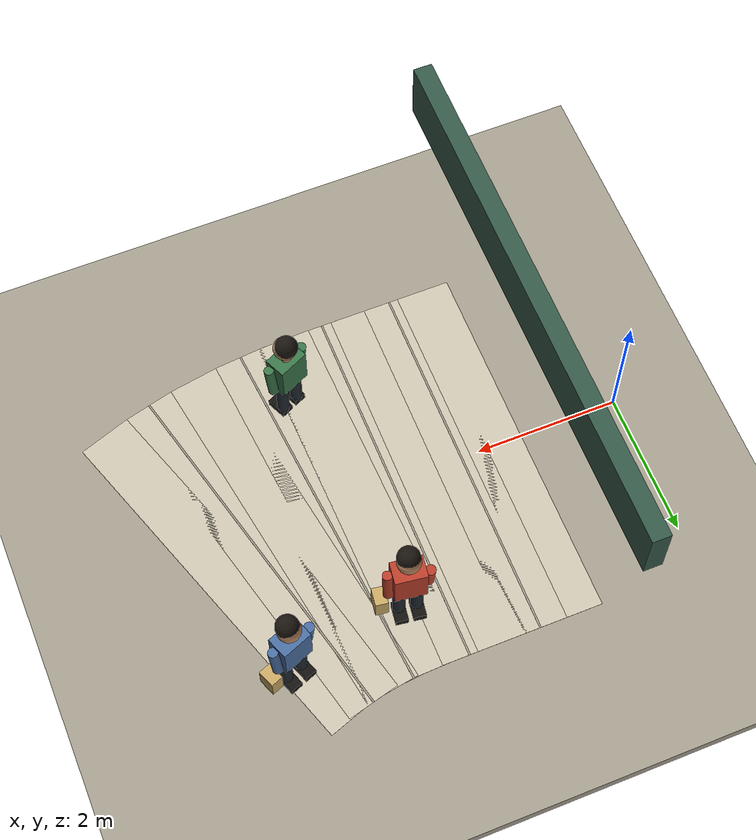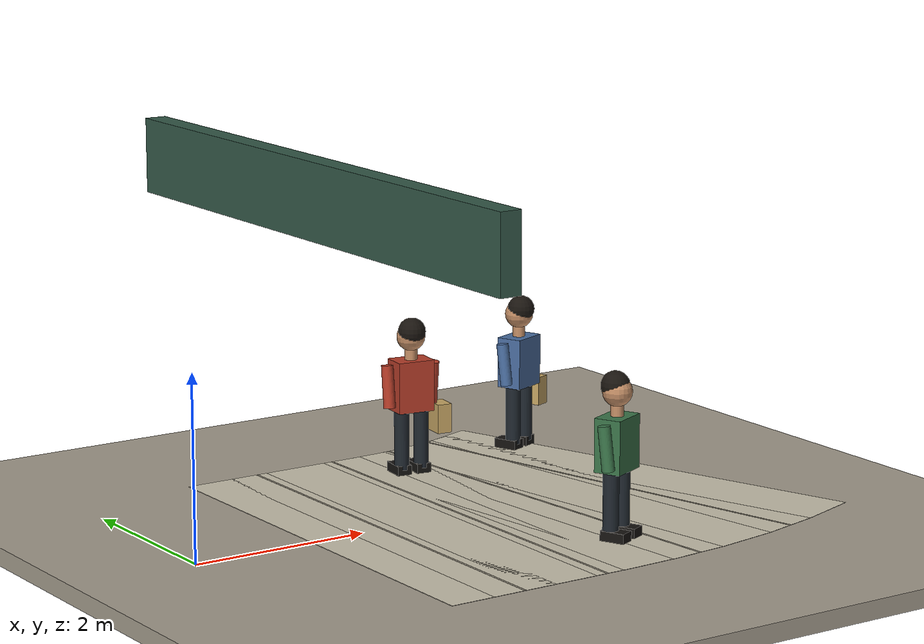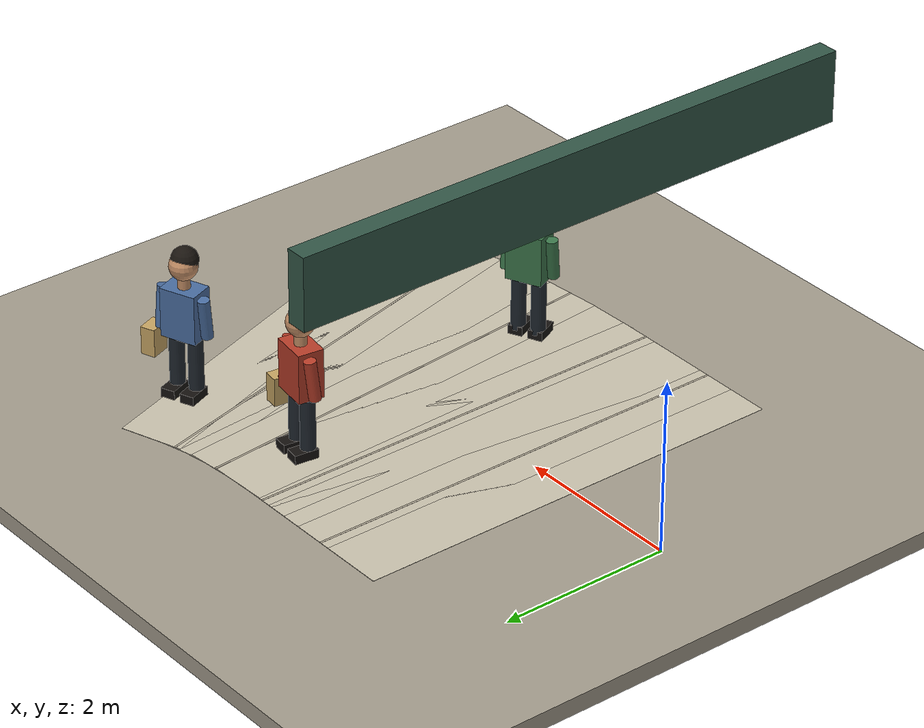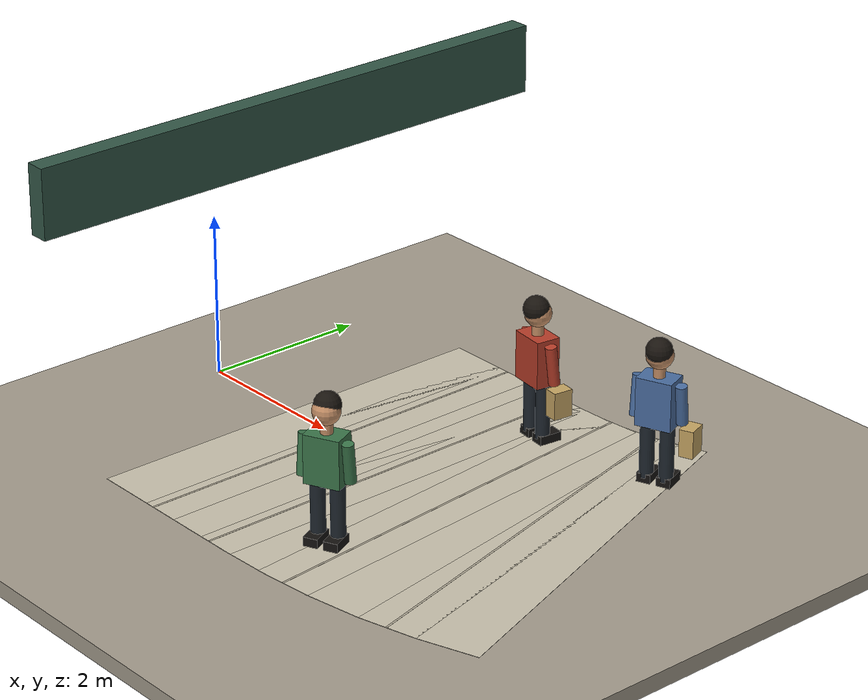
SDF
<sdf version="1.10">
 <world name="swan_market">
  <model name="ground">
   <static>true</static>
   <pose>15 0 -0.1 0 0 0</pose>
   <link name="body">
    <collision name="box_collision"><geometry><box><size>46 24 0.2</size></box></geometry></collision>
    <visual name="box_visual">
     <geometry><box><size>46 24 0.2</size></box></geometry>
     <material><ambient>0.64 0.61 0.55 1</ambient><diffuse>0.64 0.61 0.55 1</diffuse></material>
    </visual>
   </link>
  </model>
  <model name="market_paving_7">
   <static>true</static>
   <pose>1.75 0 0.002 0 0 0</pose>
   <link name="body">
    <visual name="box_visual">
     <geometry><box><size>0.75 5.2 0.004</size></box></geometry>
     <material><ambient>0.79 0.76 0.68 1</ambient><diffuse>0.79 0.76 0.68 1</diffuse></material>
    </visual>
   </link>
  </model>
  <model name="market_paving_8">
   <static>true</static>
   <pose>2.25 0 0.002 0 0 0</pose>
   <link name="body">
    <visual name="box_visual">
     <geometry><box><size>0.75 5.2 0.004</size></box></geometry>
     <material><ambient>0.79 0.76 0.68 1</ambient><diffuse>0.79 0.76 0.68 1</diffuse></material>
    </visual>
   </link>
  </model>
  <model name="paving_joint_8">
   <static>true</static>
   <pose>2.25 0 0.0045 0 0 0</pose>
   <link name="body">
    <visual name="box_visual">
     <geometry><box><size>0.025 5.2 0.001</size></box></geometry>
     <material><ambient>0.67 0.64 0.57 1</ambient><diffuse>0.67 0.64 0.57 1</diffuse></material>
    </visual>
   </link>
  </model>
  <model name="market_paving_9">
   <static>true</static>
   <pose>2.75 0 0.002 0 0 0</pose>
   <link name="body">
    <visual name="box_visual">
     <geometry><box><size>0.75 5.2 0.004</size></box></geometry>
     <material><ambient>0.79 0.76 0.68 1</ambient><diffuse>0.79 0.76 0.68 1</diffuse></material>
    </visual>
   </link>
  </model>
  <model name="market_paving_10">
   <static>true</static>
   <pose>3.25 0.00031537 0.002 0 0 0.003781</pose>
   <link name="body">
    <visual name="box_visual">
     <geometry><box><size>0.75 5.2 0.004</size></box></geometry>
     <material><ambient>0.79 0.76 0.68 1</ambient><diffuse>0.79 0.76 0.68 1</diffuse></material>
    </visual>
   </link>
  </model>
  <model name="paving_joint_10">
   <static>true</static>
   <pose>3.25 0.00031537 0.0045 0 0 0.003781</pose>
   <link name="body">
    <visual name="box_visual">
     <geometry><box><size>0.025 5.2 0.001</size></box></geometry>
     <material><ambient>0.67 0.64 0.57 1</ambient><diffuse>0.67 0.64 0.57 1</diffuse></material>
    </visual>
   </link>
  </model>
  <model name="market_paving_11">
   <static>true</static>
   <pose>3.75 0.0084221 0.002 0 0 0.033398</pose>
   <link name="body">
    <visual name="box_visual">
     <geometry><box><size>0.75 5.2 0.004</size></box></geometry>
     <material><ambient>0.79 0.76 0.68 1</ambient><diffuse>0.79 0.76 0.68 1</diffuse></material>
    </visual>
   </link>
  </model>
  <model name="market_paving_12">
   <static>true</static>
   <pose>4.25 0.038143 0.002 0 0 0.089204</pose>
   <link name="body">
    <visual name="box_visual">
     <geometry><box><size>0.75 5.2 0.004</size></box></geometry>
     <material><ambient>0.79 0.76 0.68 1</ambient><diffuse>0.79 0.76 0.68 1</diffuse></material>
    </visual>
   </link>
  </model>
  <model name="paving_joint_12">
   <static>true</static>
   <pose>4.25 0.038143 0.0045 0 0 0.089204</pose>
   <link name="body">
    <visual name="box_visual">
     <geometry><box><size>0.025 5.2 0.001</size></box></geometry>
     <material><ambient>0.67 0.64 0.57 1</ambient><diffuse>0.67 0.64 0.57 1</diffuse></material>
    </visual>
   </link>
  </model>
  <model name="market_paving_13">
   <static>true</static>
   <pose>4.75 0.10125 0.002 0 0 0.16424</pose>
   <link name="body">
    <visual name="box_visual">
     <geometry><box><size>0.75 5.2 0.004</size></box></geometry>
     <material><ambient>0.79 0.76 0.68 1</ambient><diffuse>0.79 0.76 0.68 1</diffuse></material>
    </visual>
   </link>
  </model>
  <model name="market_paving_14">
   <static>true</static>
   <pose>5.25 0.20586 0.002 0 0 0.2486</pose>
   <link name="body">
    <visual name="box_visual">
     <geometry><box><size>0.75 5.2 0.004</size></box></geometry>
     <material><ambient>0.79 0.76 0.68 1</ambient><diffuse>0.79 0.76 0.68 1</diffuse></material>
    </visual>
   </link>
  </model>
  <model name="paving_joint_14">
   <static>true</static>
   <pose>5.25 0.20586 0.0045 0 0 0.2486</pose>
   <link name="body">
    <visual name="box_visual">
     <geometry><box><size>0.025 5.2 0.001</size></box></geometry>
     <material><ambient>0.67 0.64 0.57 1</ambient><diffuse>0.67 0.64 0.57 1</diffuse></material>
    </visual>
   </link>
  </model>
  <model name="market_paving_15">
   <static>true</static>
   <pose>5.75 0.35543 0.002 0 0 0.33122</pose>
   <link name="body">
    <visual name="box_visual">
     <geometry><box><size>0.75 5.2 0.004</size></box></geometry>
     <material><ambient>0.79 0.76 0.68 1</ambient><diffuse>0.79 0.76 0.68 1</diffuse></material>
    </visual>
   </link>
  </model>
  <model name="entrance_header">
   <static>true</static>
   <pose>1.5 0 3.6 0 0 0</pose>
   <link name="body">
    <collision name="box_collision"><geometry><box><size>0.24 6.8 0.82</size></box></geometry></collision>
    <visual name="box_visual">
     <geometry><box><size>0.24 6.8 0.82</size></box></geometry>
     <material><ambient>0.2 0.34 0.28 1</ambient><diffuse>0.2 0.34 0.28 1</diffuse></material>
    </visual>
   </link>
  </model>
  <model name="shopper_fruit">
   <static>true</static>
   <pose>5.4053 1.9859 0 0 0 1.9395</pose>
   <link name="body">
    <collision name="leg_-1_collision">
     <pose>0 -0.12 0.4 0 0 0</pose>
     <geometry><cylinder><radius>0.085</radius><length>0.68</length></cylinder></geometry>
    </collision>
    <visual name="leg_-1_visual">
     <pose>0 -0.12 0.4 0 0 0</pose>
     <geometry><cylinder><radius>0.085</radius><length>0.68</length></cylinder></geometry>
     <material><ambient>0.12 0.15 0.18 1</ambient><diffuse>0.12 0.15 0.18 1</diffuse></material>
    </visual>
    <collision name="shoe_-1_collision">
     <pose>0.06 -0.12 0.055 0 0 0</pose>
     <geometry><box><size>0.28 0.17 0.11</size></box></geometry>
    </collision>
    <visual name="shoe_-1_visual">
     <pose>0.06 -0.12 0.055 0 0 0</pose>
     <geometry><box><size>0.28 0.17 0.11</size></box></geometry>
     <material><ambient>0.08 0.07 0.06 1</ambient><diffuse>0.08 0.07 0.06 1</diffuse></material>
    </visual>
    <collision name="arm_-1_collision">
     <pose>0.02 -0.27 1.02 0 -0.12 0</pose>
     <geometry><cylinder><radius>0.068</radius><length>0.48</length></cylinder></geometry>
    </collision>
    <visual name="arm_-1_visual">
     <pose>0.02 -0.27 1.02 0 -0.12 0</pose>
     <geometry><cylinder><radius>0.068</radius><length>0.48</length></cylinder></geometry>
     <material><ambient>0.29 0.43 0.63 1</ambient><diffuse>0.29 0.43 0.63 1</diffuse></material>
    </visual>
    <collision name="leg_1_collision">
     <pose>0 0.12 0.4 0 0 0</pose>
     <geometry><cylinder><radius>0.085</radius><length>0.68</length></cylinder></geometry>
    </collision>
    <visual name="leg_1_visual">
     <pose>0 0.12 0.4 0 0 0</pose>
     <geometry><cylinder><radius>0.085</radius><length>0.68</length></cylinder></geometry>
     <material><ambient>0.12 0.15 0.18 1</ambient><diffuse>0.12 0.15 0.18 1</diffuse></material>
    </visual>
    <collision name="shoe_1_collision">
     <pose>0.06 0.12 0.055 0 0 0</pose>
     <geometry><box><size>0.28 0.17 0.11</size></box></geometry>
    </collision>
    <visual name="shoe_1_visual">
     <pose>0.06 0.12 0.055 0 0 0</pose>
     <geometry><box><size>0.28 0.17 0.11</size></box></geometry>
     <material><ambient>0.08 0.07 0.06 1</ambient><diffuse>0.08 0.07 0.06 1</diffuse></material>
    </visual>
    <collision name="arm_1_collision">
     <pose>0.02 0.27 1.02 0 0.12 0</pose>
     <geometry><cylinder><radius>0.068</radius><length>0.48</length></cylinder></geometry>
    </collision>
    <visual name="arm_1_visual">
     <pose>0.02 0.27 1.02 0 0.12 0</pose>
     <geometry><cylinder><radius>0.068</radius><length>0.48</length></cylinder></geometry>
     <material><ambient>0.29 0.43 0.63 1</ambient><diffuse>0.29 0.43 0.63 1</diffuse></material>
    </visual>
    <collision name="torso_collision">
     <pose>0 0 1.02 0 0 0</pose>
     <geometry><box><size>0.3 0.43 0.58</size></box></geometry>
    </collision>
    <visual name="torso_visual">
     <pose>0 0 1.02 0 0 0</pose>
     <geometry><box><size>0.3 0.43 0.58</size></box></geometry>
     <material><ambient>0.29 0.43 0.63 1</ambient><diffuse>0.29 0.43 0.63 1</diffuse></material>
    </visual>
    <visual name="neck_visual">
     <pose>0 0 1.37 0 0 0</pose>
     <geometry><cylinder><radius>0.07</radius><length>0.13</length></cylinder></geometry>
     <material><ambient>0.77 0.56 0.4 1</ambient><diffuse>0.77 0.56 0.4 1</diffuse></material>
    </visual>
    <collision name="head_collision">
     <pose>0 0 1.57 0 0 0</pose>
     <geometry><sphere><radius>0.16</radius></sphere></geometry>
    </collision>
    <visual name="head_visual">
     <pose>0 0 1.57 0 0 0</pose>
     <geometry><sphere><radius>0.16</radius></sphere></geometry>
     <material><ambient>0.77 0.56 0.4 1</ambient><diffuse>0.77 0.56 0.4 1</diffuse></material>
    </visual>
    <visual name="hair_visual">
     <pose>-0.025 0 1.63 0 0 0</pose>
     <geometry><sphere><radius>0.155</radius></sphere></geometry>
     <material><ambient>0.1 0.08 0.06 1</ambient><diffuse>0.1 0.08 0.06 1</diffuse></material>
    </visual>
    <collision name="shopping_bag_collision">
     <pose>0.04 -0.38 0.6 0 0 0</pose>
     <geometry><box><size>0.24 0.17 0.33</size></box></geometry>
    </collision>
    <visual name="shopping_bag_visual">
     <pose>0.04 -0.38 0.6 0 0 0</pose>
     <geometry><box><size>0.24 0.17 0.33</size></box></geometry>
     <material><ambient>0.78 0.65 0.39 1</ambient><diffuse>0.78 0.65 0.39 1</diffuse></material>
    </visual>
   </link>
  </model>
  <model name="crowd_00">
   <static>true</static>
   <pose>3.7356 1.709 0 0 0 1.4379</pose>
   <link name="body">
    <collision name="leg_-1_collision">
     <pose>0 -0.12 0.4 0 0 0</pose>
     <geometry><cylinder><radius>0.085</radius><length>0.68</length></cylinder></geometry>
    </collision>
    <visual name="leg_-1_visual">
     <pose>0 -0.12 0.4 0 0 0</pose>
     <geometry><cylinder><radius>0.085</radius><length>0.68</length></cylinder></geometry>
     <material><ambient>0.12 0.15 0.18 1</ambient><diffuse>0.12 0.15 0.18 1</diffuse></material>
    </visual>
    <collision name="shoe_-1_collision">
     <pose>0.06 -0.12 0.055 0 0 0</pose>
     <geometry><box><size>0.28 0.17 0.11</size></box></geometry>
    </collision>
    <visual name="shoe_-1_visual">
     <pose>0.06 -0.12 0.055 0 0 0</pose>
     <geometry><box><size>0.28 0.17 0.11</size></box></geometry>
     <material><ambient>0.08 0.07 0.06 1</ambient><diffuse>0.08 0.07 0.06 1</diffuse></material>
    </visual>
    <collision name="arm_-1_collision">
     <pose>0.02 -0.27 1.02 0 -0.12 0</pose>
     <geometry><cylinder><radius>0.068</radius><length>0.48</length></cylinder></geometry>
    </collision>
    <visual name="arm_-1_visual">
     <pose>0.02 -0.27 1.02 0 -0.12 0</pose>
     <geometry><cylinder><radius>0.068</radius><length>0.48</length></cylinder></geometry>
     <material><ambient>0.72 0.24 0.16 1</ambient><diffuse>0.72 0.24 0.16 1</diffuse></material>
    </visual>
    <collision name="leg_1_collision">
     <pose>0 0.12 0.4 0 0 0</pose>
     <geometry><cylinder><radius>0.085</radius><length>0.68</length></cylinder></geometry>
    </collision>
    <visual name="leg_1_visual">
     <pose>0 0.12 0.4 0 0 0</pose>
     <geometry><cylinder><radius>0.085</radius><length>0.68</length></cylinder></geometry>
     <material><ambient>0.12 0.15 0.18 1</ambient><diffuse>0.12 0.15 0.18 1</diffuse></material>
    </visual>
    <collision name="shoe_1_collision">
     <pose>0.06 0.12 0.055 0 0 0</pose>
     <geometry><box><size>0.28 0.17 0.11</size></box></geometry>
    </collision>
    <visual name="shoe_1_visual">
     <pose>0.06 0.12 0.055 0 0 0</pose>
     <geometry><box><size>0.28 0.17 0.11</size></box></geometry>
     <material><ambient>0.08 0.07 0.06 1</ambient><diffuse>0.08 0.07 0.06 1</diffuse></material>
    </visual>
    <collision name="arm_1_collision">
     <pose>0.02 0.27 1.02 0 0.12 0</pose>
     <geometry><cylinder><radius>0.068</radius><length>0.48</length></cylinder></geometry>
    </collision>
    <visual name="arm_1_visual">
     <pose>0.02 0.27 1.02 0 0.12 0</pose>
     <geometry><cylinder><radius>0.068</radius><length>0.48</length></cylinder></geometry>
     <material><ambient>0.72 0.24 0.16 1</ambient><diffuse>0.72 0.24 0.16 1</diffuse></material>
    </visual>
    <collision name="torso_collision">
     <pose>0 0 1.02 0 0 0</pose>
     <geometry><box><size>0.3 0.43 0.58</size></box></geometry>
    </collision>
    <visual name="torso_visual">
     <pose>0 0 1.02 0 0 0</pose>
     <geometry><box><size>0.3 0.43 0.58</size></box></geometry>
     <material><ambient>0.72 0.24 0.16 1</ambient><diffuse>0.72 0.24 0.16 1</diffuse></material>
    </visual>
    <visual name="neck_visual">
     <pose>0 0 1.37 0 0 0</pose>
     <geometry><cylinder><radius>0.07</radius><length>0.13</length></cylinder></geometry>
     <material><ambient>0.77 0.56 0.4 1</ambient><diffuse>0.77 0.56 0.4 1</diffuse></material>
    </visual>
    <collision name="head_collision">
     <pose>0 0 1.57 0 0 0</pose>
     <geometry><sphere><radius>0.16</radius></sphere></geometry>
    </collision>
    <visual name="head_visual">
     <pose>0 0 1.57 0 0 0</pose>
     <geometry><sphere><radius>0.16</radius></sphere></geometry>
     <material><ambient>0.77 0.56 0.4 1</ambient><diffuse>0.77 0.56 0.4 1</diffuse></material>
    </visual>
    <visual name="hair_visual">
     <pose>-0.025 0 1.63 0 0 0</pose>
     <geometry><sphere><radius>0.155</radius></sphere></geometry>
     <material><ambient>0.1 0.08 0.06 1</ambient><diffuse>0.1 0.08 0.06 1</diffuse></material>
    </visual>
    <collision name="shopping_bag_collision">
     <pose>0.04 -0.38 0.6 0 0 0</pose>
     <geometry><box><size>0.24 0.17 0.33</size></box></geometry>
    </collision>
    <visual name="shopping_bag_visual">
     <pose>0.04 -0.38 0.6 0 0 0</pose>
     <geometry><box><size>0.24 0.17 0.33</size></box></geometry>
     <material><ambient>0.78 0.65 0.39 1</ambient><diffuse>0.78 0.65 0.39 1</diffuse></material>
    </visual>
   </link>
  </model>
  <model name="crowd_01">
   <static>true</static>
   <pose>4.0963 -1.6274 0 0 0 -1.1416</pose>
   <link name="body">
    <collision name="leg_-1_collision">
     <pose>0 -0.12 0.4 0 0 0</pose>
     <geometry><cylinder><radius>0.085</radius><length>0.68</length></cylinder></geometry>
    </collision>
    <visual name="leg_-1_visual">
     <pose>0 -0.12 0.4 0 0 0</pose>
     <geometry><cylinder><radius>0.085</radius><length>0.68</length></cylinder></geometry>
     <material><ambient>0.12 0.15 0.18 1</ambient><diffuse>0.12 0.15 0.18 1</diffuse></material>
    </visual>
    <collision name="shoe_-1_collision">
     <pose>0.06 -0.12 0.055 0 0 0</pose>
     <geometry><box><size>0.28 0.17 0.11</size></box></geometry>
    </collision>
    <visual name="shoe_-1_visual">
     <pose>0.06 -0.12 0.055 0 0 0</pose>
     <geometry><box><size>0.28 0.17 0.11</size></box></geometry>
     <material><ambient>0.08 0.07 0.06 1</ambient><diffuse>0.08 0.07 0.06 1</diffuse></material>
    </visual>
    <collision name="arm_-1_collision">
     <pose>0.02 -0.27 1.02 0 -0.12 0</pose>
     <geometry><cylinder><radius>0.068</radius><length>0.48</length></cylinder></geometry>
    </collision>
    <visual name="arm_-1_visual">
     <pose>0.02 -0.27 1.02 0 -0.12 0</pose>
     <geometry><cylinder><radius>0.068</radius><length>0.48</length></cylinder></geometry>
     <material><ambient>0.23 0.46 0.29 1</ambient><diffuse>0.23 0.46 0.29 1</diffuse></material>
    </visual>
    <collision name="leg_1_collision">
     <pose>0 0.12 0.4 0 0 0</pose>
     <geometry><cylinder><radius>0.085</radius><length>0.68</length></cylinder></geometry>
    </collision>
    <visual name="leg_1_visual">
     <pose>0 0.12 0.4 0 0 0</pose>
     <geometry><cylinder><radius>0.085</radius><length>0.68</length></cylinder></geometry>
     <material><ambient>0.12 0.15 0.18 1</ambient><diffuse>0.12 0.15 0.18 1</diffuse></material>
    </visual>
    <collision name="shoe_1_collision">
     <pose>0.06 0.12 0.055 0 0 0</pose>
     <geometry><box><size>0.28 0.17 0.11</size></box></geometry>
    </collision>
    <visual name="shoe_1_visual">
     <pose>0.06 0.12 0.055 0 0 0</pose>
     <geometry><box><size>0.28 0.17 0.11</size></box></geometry>
     <material><ambient>0.08 0.07 0.06 1</ambient><diffuse>0.08 0.07 0.06 1</diffuse></material>
    </visual>
    <collision name="arm_1_collision">
     <pose>0.02 0.27 1.02 0 0.12 0</pose>
     <geometry><cylinder><radius>0.068</radius><length>0.48</length></cylinder></geometry>
    </collision>
    <visual name="arm_1_visual">
     <pose>0.02 0.27 1.02 0 0.12 0</pose>
     <geometry><cylinder><radius>0.068</radius><length>0.48</length></cylinder></geometry>
     <material><ambient>0.23 0.46 0.29 1</ambient><diffuse>0.23 0.46 0.29 1</diffuse></material>
    </visual>
    <collision name="torso_collision">
     <pose>0 0 1.02 0 0 0</pose>
     <geometry><box><size>0.3 0.43 0.58</size></box></geometry>
    </collision>
    <visual name="torso_visual">
     <pose>0 0 1.02 0 0 0</pose>
     <geometry><box><size>0.3 0.43 0.58</size></box></geometry>
     <material><ambient>0.23 0.46 0.29 1</ambient><diffuse>0.23 0.46 0.29 1</diffuse></material>
    </visual>
    <visual name="neck_visual">
     <pose>0 0 1.37 0 0 0</pose>
     <geometry><cylinder><radius>0.07</radius><length>0.13</length></cylinder></geometry>
     <material><ambient>0.77 0.56 0.4 1</ambient><diffuse>0.77 0.56 0.4 1</diffuse></material>
    </visual>
    <collision name="head_collision">
     <pose>0 0 1.57 0 0 0</pose>
     <geometry><sphere><radius>0.16</radius></sphere></geometry>
    </collision>
    <visual name="head_visual">
     <pose>0 0 1.57 0 0 0</pose>
     <geometry><sphere><radius>0.16</radius></sphere></geometry>
     <material><ambient>0.77 0.56 0.4 1</ambient><diffuse>0.77 0.56 0.4 1</diffuse></material>
    </visual>
    <visual name="hair_visual">
     <pose>-0.025 0 1.63 0 0 0</pose>
     <geometry><sphere><radius>0.155</radius></sphere></geometry>
     <material><ambient>0.1 0.08 0.06 1</ambient><diffuse>0.1 0.08 0.06 1</diffuse></material>
    </visual>
   </link>
  </model>
 </world>
</sdf>
